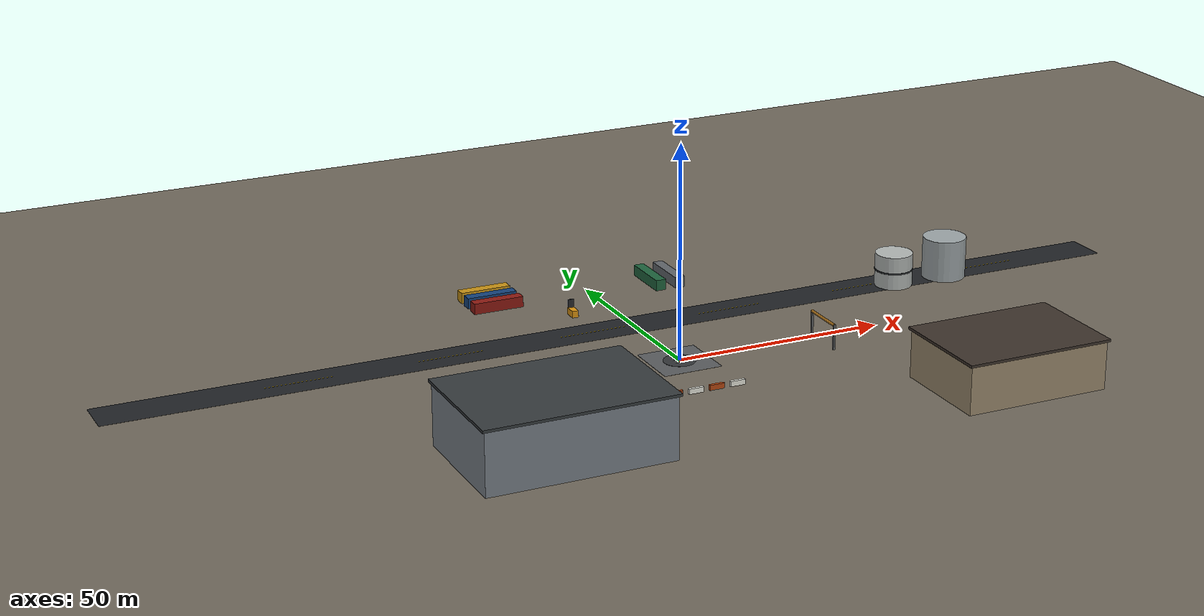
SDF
<?xml version="1.0" encoding="UTF-8"?>
<sdf version="1.9">
  <world name="industrial_yard">
    <physics type="ode">
      <max_step_size>0.004</max_step_size>
      <real_time_factor>1.0</real_time_factor>
      <real_time_update_rate>250</real_time_update_rate>
    </physics>
    <gravity>0 0 -9.8</gravity>
    <magnetic_field>6e-06 2.3e-05 -4.2e-05</magnetic_field>
    <atmosphere type="adiabatic"/>
    <scene>
      <grid>false</grid>
      <ambient>0.45 0.46 0.47 1</ambient>
      <background>0.57 0.68 0.78 1</background>
      <shadows>true</shadows>
    </scene>

    <light name="sunUTC" type="directional">
      <pose>0 0 500 0 0 0</pose>
      <cast_shadows>true</cast_shadows>
      <intensity>0.98</intensity>
      <direction>-0.25 0.48 -0.84</direction>
      <diffuse>0.92 0.90 0.84 1</diffuse>
      <specular>0.22 0.22 0.20 1</specular>
      <attenuation><range>2000</range><linear>0</linear><constant>1</constant><quadratic>0</quadratic></attenuation>
    </light>

    <model name="ground_plane">
      <static>true</static>
      <link name="link">
        <collision name="collision"><geometry><plane><normal>0 0 1</normal><size>1 1</size></plane></geometry></collision>
        <visual name="yard"><geometry><plane><normal>0 0 1</normal><size>460 460</size></plane></geometry><material><ambient>0.34 0.32 0.29 1</ambient><diffuse>0.44 0.41 0.36 1</diffuse><specular>0.03 0.03 0.03 1</specular></material></visual>
      </link>
    </model>

    <model name="launch_pad">
      <static>true</static><pose>0 0 0.008 0 0 0</pose>
      <link name="link">
        <visual name="pad"><geometry><box><size>14 14 0.016</size></box></geometry><material><diffuse>0.35 0.36 0.37 1</diffuse></material></visual>
        <visual name="ring"><pose>0 0 0.012 0 0 0</pose><geometry><cylinder><radius>3.7</radius><length>0.01</length></cylinder></geometry><material><diffuse>0.20 0.21 0.22 1</diffuse></material></visual>
        <visual name="h1"><pose>0 -0.8 0.022 0 0 0</pose><geometry><box><size>2.5 0.34 0.01</size></box></geometry><material><diffuse>0.96 0.96 0.94 1</diffuse></material></visual>
        <visual name="h2"><pose>0 0.8 0.022 0 0 0</pose><geometry><box><size>2.5 0.34 0.01</size></box></geometry><material><diffuse>0.96 0.96 0.94 1</diffuse></material></visual>
        <visual name="h3"><pose>0 0 0.023 0 0 0</pose><geometry><box><size>0.38 1.95 0.01</size></box></geometry><material><diffuse>0.96 0.96 0.94 1</diffuse></material></visual>
      </link>
    </model>

    <model name="main_lane">
      <static>true</static><pose>0 24 0.012 0 0 0</pose>
      <link name="link">
        <visual name="asphalt"><geometry><box><size>250 10 0.024</size></box></geometry><material><diffuse>0.13 0.14 0.15 1</diffuse></material></visual>
        <visual name="line_1"><pose>-80 0 0.018 0 0 0</pose><geometry><box><size>16 0.13 0.01</size></box></geometry><material><diffuse>0.94 0.78 0.08 1</diffuse></material></visual>
        <visual name="line_2"><pose>-45 0 0.018 0 0 0</pose><geometry><box><size>16 0.13 0.01</size></box></geometry><material><diffuse>0.94 0.78 0.08 1</diffuse></material></visual>
        <visual name="line_3"><pose>-10 0 0.018 0 0 0</pose><geometry><box><size>16 0.13 0.01</size></box></geometry><material><diffuse>0.94 0.78 0.08 1</diffuse></material></visual>
        <visual name="line_4"><pose>25 0 0.018 0 0 0</pose><geometry><box><size>16 0.13 0.01</size></box></geometry><material><diffuse>0.94 0.78 0.08 1</diffuse></material></visual>
        <visual name="line_5"><pose>60 0 0.018 0 0 0</pose><geometry><box><size>16 0.13 0.01</size></box></geometry><material><diffuse>0.94 0.78 0.08 1</diffuse></material></visual>
        <visual name="line_6"><pose>95 0 0.018 0 0 0</pose><geometry><box><size>16 0.13 0.01</size></box></geometry><material><diffuse>0.94 0.78 0.08 1</diffuse></material></visual>
      </link>
    </model>

    <model name="warehouse_a">
      <static>true</static><pose>-45 -34 7 0 0 0</pose>
      <link name="link">
        <collision name="collision"><geometry><box><size>42 28 14</size></box></geometry></collision>
        <visual name="body"><geometry><box><size>42 28 14</size></box></geometry><material><ambient>0.35 0.38 0.40 1</ambient><diffuse>0.47 0.50 0.53 1</diffuse><specular>0.22 0.22 0.22 1</specular></material></visual>
        <visual name="roof"><pose>0 0 7.3 0 0 0</pose><geometry><box><size>43 29 0.6</size></box></geometry><material><diffuse>0.21 0.23 0.24 1</diffuse></material></visual>
        <visual name="door"><pose>21.02 0 -1.5 0 1.5708 0</pose><geometry><box><size>7 11 0.08</size></box></geometry><material><diffuse>0.12 0.14 0.15 1</diffuse></material></visual>
      </link>
    </model>

    <model name="warehouse_b">
      <static>true</static><pose>58 -42 5.5 0 0 0</pose>
      <link name="link">
        <collision name="collision"><geometry><box><size>34 24 11</size></box></geometry></collision>
        <visual name="body"><geometry><box><size>34 24 11</size></box></geometry><material><ambient>0.48 0.43 0.35 1</ambient><diffuse>0.61 0.54 0.43 1</diffuse></material></visual>
        <visual name="roof"><pose>0 0 5.8 0 0 0</pose><geometry><box><size>35 25 0.6</size></box></geometry><material><diffuse>0.24 0.20 0.17 1</diffuse></material></visual>
      </link>
    </model>

    <model name="container_red_1"><static>true</static><pose>-24 47 1.3 0 0 0</pose><link name="link"><collision name="collision"><geometry><box><size>12.2 2.5 2.6</size></box></geometry></collision><visual name="body"><geometry><box><size>12.2 2.5 2.6</size></box></geometry><material><diffuse>0.55 0.10 0.07 1</diffuse><specular>0.18 0.18 0.18 1</specular></material></visual></link></model>
    <model name="container_blue_1"><static>true</static><pose>-24 51 1.3 0 0 0</pose><link name="link"><collision name="collision"><geometry><box><size>12.2 2.5 2.6</size></box></geometry></collision><visual name="body"><geometry><box><size>12.2 2.5 2.6</size></box></geometry><material><diffuse>0.08 0.26 0.48 1</diffuse><specular>0.18 0.18 0.18 1</specular></material></visual></link></model>
    <model name="container_yellow_1"><static>true</static><pose>-24 55 1.3 0 0 0</pose><link name="link"><collision name="collision"><geometry><box><size>12.2 2.5 2.6</size></box></geometry></collision><visual name="body"><geometry><box><size>12.2 2.5 2.6</size></box></geometry><material><diffuse>0.78 0.57 0.08 1</diffuse><specular>0.18 0.18 0.18 1</specular></material></visual></link></model>
    <model name="container_green_1"><static>true</static><pose>16 48 1.3 0 0 1.5708</pose><link name="link"><collision name="collision"><geometry><box><size>12.2 2.5 2.6</size></box></geometry></collision><visual name="body"><geometry><box><size>12.2 2.5 2.6</size></box></geometry><material><diffuse>0.12 0.39 0.24 1</diffuse><specular>0.18 0.18 0.18 1</specular></material></visual></link></model>
    <model name="container_gray_1"><static>true</static><pose>21 48 1.3 0 0 1.5708</pose><link name="link"><collision name="collision"><geometry><box><size>12.2 2.5 2.6</size></box></geometry></collision><visual name="body"><geometry><box><size>12.2 2.5 2.6</size></box></geometry><material><diffuse>0.38 0.40 0.42 1</diffuse><specular>0.18 0.18 0.18 1</specular></material></visual></link></model>

    <model name="tank_1"><static>true</static><pose>68 22 4 0 0 0</pose><link name="link"><collision name="collision"><geometry><cylinder><radius>4.5</radius><length>8</length></cylinder></geometry></collision><visual name="tank"><geometry><cylinder><radius>4.5</radius><length>8</length></cylinder></geometry><material><diffuse>0.70 0.72 0.71 1</diffuse><specular>0.45 0.45 0.45 1</specular></material></visual><visual name="band"><pose>0 0 0 0 0 0</pose><geometry><cylinder><radius>4.56</radius><length>0.35</length></cylinder></geometry><material><diffuse>0.20 0.22 0.23 1</diffuse></material></visual></link></model>
    <model name="tank_2"><static>true</static><pose>82 22 5 0 0 0</pose><link name="link"><collision name="collision"><geometry><cylinder><radius>5.2</radius><length>10</length></cylinder></geometry></collision><visual name="tank"><geometry><cylinder><radius>5.2</radius><length>10</length></cylinder></geometry><material><diffuse>0.62 0.65 0.66 1</diffuse><specular>0.45 0.45 0.45 1</specular></material></visual></link></model>

    <model name="pipe_bridge">
      <static>true</static><pose>34 -4 0 0 0 0</pose>
      <link name="link">
        <collision name="post_a"><pose>0 -5 3 0 0 0</pose><geometry><box><size>0.45 0.45 6</size></box></geometry></collision>
        <collision name="post_b"><pose>0 5 3 0 0 0</pose><geometry><box><size>0.45 0.45 6</size></box></geometry></collision>
        <collision name="pipe"><pose>0 0 5.8 1.5708 0 0</pose><geometry><cylinder><radius>0.32</radius><length>10</length></cylinder></geometry></collision>
        <visual name="post_a"><pose>0 -5 3 0 0 0</pose><geometry><box><size>0.45 0.45 6</size></box></geometry><material><diffuse>0.36 0.37 0.38 1</diffuse></material></visual>
        <visual name="post_b"><pose>0 5 3 0 0 0</pose><geometry><box><size>0.45 0.45 6</size></box></geometry><material><diffuse>0.36 0.37 0.38 1</diffuse></material></visual>
        <visual name="pipe"><pose>0 0 5.8 1.5708 0 0</pose><geometry><cylinder><radius>0.32</radius><length>10</length></cylinder></geometry><material><diffuse>0.72 0.48 0.12 1</diffuse><specular>0.28 0.28 0.28 1</specular></material></visual>
      </link>
    </model>

    <model name="forklift"><static>true</static><pose>-10 35 1.0 0 0 1.5708</pose><link name="link"><collision name="body_collision"><geometry><box><size>2.8 1.5 1.6</size></box></geometry></collision><visual name="body"><geometry><box><size>2.8 1.5 1.6</size></box></geometry><material><diffuse>0.86 0.58 0.06 1</diffuse></material></visual><collision name="mast_collision"><pose>1.3 0 1.3 0 0 0</pose><geometry><box><size>0.25 1.4 3.0</size></box></geometry></collision><visual name="mast"><pose>1.3 0 1.3 0 0 0</pose><geometry><box><size>0.25 1.4 3.0</size></box></geometry><material><diffuse>0.15 0.16 0.17 1</diffuse></material></visual></link></model>

    <model name="barrier_row">
      <static>true</static><pose>-2 -18 0 0 0 0</pose>
      <link name="link">
        <collision name="b1"><pose>-8 0 0.6 0 0 0</pose><geometry><box><size>3.5 0.65 1.2</size></box></geometry></collision>
        <collision name="b2"><pose>-3 0 0.6 0 0 0</pose><geometry><box><size>3.5 0.65 1.2</size></box></geometry></collision>
        <collision name="b3"><pose>2 0 0.6 0 0 0</pose><geometry><box><size>3.5 0.65 1.2</size></box></geometry></collision>
        <collision name="b4"><pose>7 0 0.6 0 0 0</pose><geometry><box><size>3.5 0.65 1.2</size></box></geometry></collision>
        <visual name="b1"><pose>-8 0 0.6 0 0 0</pose><geometry><box><size>3.5 0.65 1.2</size></box></geometry><material><diffuse>0.72 0.28 0.07 1</diffuse></material></visual>
        <visual name="b2"><pose>-3 0 0.6 0 0 0</pose><geometry><box><size>3.5 0.65 1.2</size></box></geometry><material><diffuse>0.90 0.90 0.86 1</diffuse></material></visual>
        <visual name="b3"><pose>2 0 0.6 0 0 0</pose><geometry><box><size>3.5 0.65 1.2</size></box></geometry><material><diffuse>0.72 0.28 0.07 1</diffuse></material></visual>
        <visual name="b4"><pose>7 0 0.6 0 0 0</pose><geometry><box><size>3.5 0.65 1.2</size></box></geometry><material><diffuse>0.90 0.90 0.86 1</diffuse></material></visual>
      </link>
    </model>

    <spherical_coordinates>
      <surface_model>EARTH_WGS84</surface_model>
      <world_frame_orientation>ENU</world_frame_orientation>
      <latitude_deg>47.397971057728974</latitude_deg>
      <longitude_deg>8.546163739800146</longitude_deg>
      <elevation>0</elevation>
    </spherical_coordinates>
  </world>
</sdf>
